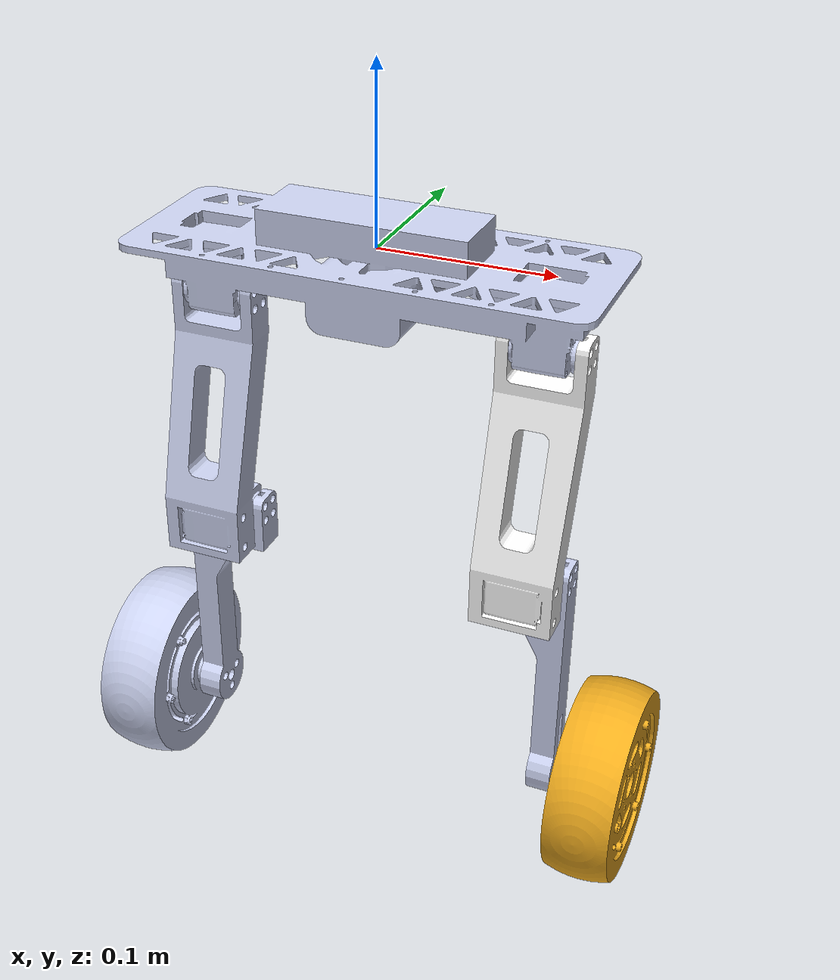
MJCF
<mujoco model="Total.SLDASM">
  <compiler angle="radian"/>

  <asset>
    <mesh name="base_link" content_type="model/stl" file="../meshes/base_link.STL"/>
    <mesh name="left_leg" content_type="model/stl" file="../meshes/left_leg.STL"/>
    <mesh name="left_foot" content_type="model/stl" file="../meshes/left_foot.STL"/>
    <mesh name="left_wheel" content_type="model/stl" file="../meshes/left_wheel.STL"/>
    <mesh name="right_leg" content_type="model/stl" file="../meshes/right_leg.STL"/>
    <mesh name="right_foot" content_type="model/stl" file="../meshes/right_foot.STL"/>
    <mesh name="right_wheel" content_type="model/stl" file="../meshes/right_wheel.STL"/>
  </asset>

  <worldbody>
    <geom type="mesh" rgba="0.79216 0.81961 0.93333 1" mesh="base_link"/>
    <body name="left_leg" pos="-0.1148 0 -0.04075" quat="0.499998 0.5 -0.500002 -0.5">
      <inertial pos="0.014085 -0.086343 -0.017864" quat="0.704744 0.699928 0.079862 0.084017" mass="0.11866" diaginertia="0.00022805 0.000205989 3.64827e-05"/>
      <joint name="servo2" pos="0 0 0" axis="0 0 1" range="-1.57 1.57" actuatorfrcrange="-5 5"/>
      <geom type="mesh" rgba="0.79216 0.81961 0.93333 1" mesh="left_leg"/>
      <body name="left_foot" pos="0.0002967 -0.14 0">
        <inertial pos="-0.00038874 -0.06993 -0.0060741" quat="0.747777 0.663944 -0.00184553 -0.00207827" mass="0.057726" diaginertia="0.000135864 0.000131727 9.16446e-06"/>
        <joint name="servo1" pos="0 0 0" axis="0 0 1" range="-3.14 0" actuatorfrcrange="-5 5"/>
        <geom type="mesh" rgba="0.79216 0.81961 0.93333 1" mesh="left_foot"/>
        <body name="left_wheel" pos="-0.00077824 -0.14 -0.00275" quat="-3.67321e-06 0 0 1">
          <inertial pos="-0.00048154 -0.00095238 0.036709" quat="0.5 0.5 -0.5 0.5" mass="0.43394" diaginertia="0.001247 0.000686 0.000686"/>
          <joint name="wheel1" pos="0 0 0" axis="0 0 1"/>
          <geom type="mesh" rgba="0.79216 0.81961 0.93333 1" mesh="left_wheel"/>
        </body>
      </body>
    </body>
    <body name="right_leg" pos="0.1148 0 -0.04075" quat="0.499998 0.5 0.500002 0.5">
      <inertial pos="-0.014085 -0.086343 -0.017864" quat="0.704744 0.699928 -0.079862 -0.084017" mass="0.11866" diaginertia="0.00022805 0.000205989 3.64827e-05"/>
      <joint name="servo4" pos="0 0 0" axis="0 0 1" range="-1.57 1.57" actuatorfrcrange="-5 5"/>
      <geom type="mesh" rgba="1 1 1 1" mesh="right_leg"/>
      <body name="right_foot" pos="-0.0002967 -0.14 0">
        <inertial pos="0.00038874 -0.06993 -0.0060741" quat="0.747777 0.663944 0.00184553 0.00207827" mass="0.057726" diaginertia="0.000135864 0.000131727 9.16446e-06"/>
        <joint name="servo3" pos="0 0 0" axis="0 0 1" range="0 3.14" actuatorfrcrange="-5 5"/>
        <geom type="mesh" rgba="0.79216 0.81961 0.93333 1" mesh="right_foot"/>
        <body name="right_wheel" pos="0.00077824 -0.14 -0.00275">
          <inertial pos="-0.00048154 0.00095238 0.036709" quat="0.5 0.5 -0.5 0.5" mass="0.43394" diaginertia="0.00124706 0.00068649 0.00068643"/>
          <joint name="wheel2" pos="0 0 0" axis="0 0 1"/>
          <geom type="mesh" rgba="0.94118 0.67451 0.11765 1" mesh="right_wheel"/>
        </body>
      </body>
    </body>
  </worldbody>
</mujoco>
